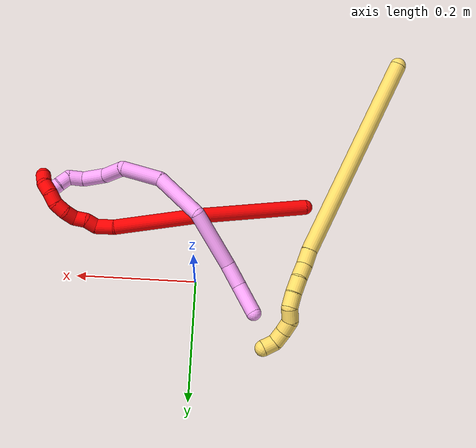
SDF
<sdf version="1.7">
 <world name="default">
  <model name="2">
   <static>0</static>
   <link name="2">
    <collision name="collision-cylinder-e_1_1_4">
     <pose>0.084731 0.038203 -0.011958 -1.87414 1.12943 -1.42301</pose>
     <geometry><cylinder><radius>0.0125</radius><length>0.187423</length></cylinder></geometry>
     <surface>
      <friction><ode><mu>1.16</mu><mu2>1.16</mu2><slip1>0</slip1><slip2>0</slip2></ode></friction>
      <contact><ode><kp>1e+06</kp><kd>1</kd><max_vel>0</max_vel><min_depth>0.001</min_depth></ode></contact>
     </surface>
    </collision>
    <visual name="visual-cylinder-e_1_1_4">
     <pose>0.084731 0.038203 -0.011958 -1.87414 1.12943 -1.42301</pose>
     <geometry><cylinder><radius>0.0125</radius><length>0.187423</length></cylinder></geometry>
     <material><ambient>1 0 0 1</ambient></material>
    </visual>
    <collision name="collision-cylinder-e_2_4_5">
     <pose>0.225444 0.107104 -0.053192 -2.33252 0.922359 -1.71919</pose>
     <geometry><cylinder><radius>0.0125</radius><length>0.140477</length></cylinder></geometry>
     <surface>
      <friction><ode><mu>1.16</mu><mu2>1.16</mu2><slip1>0</slip1><slip2>0</slip2></ode></friction>
      <contact><ode><kp>1e+06</kp><kd>1</kd><max_vel>0</max_vel><min_depth>0.001</min_depth></ode></contact>
     </surface>
    </collision>
    <visual name="visual-cylinder-e_2_4_5">
     <pose>0.225444 0.107104 -0.053192 -2.33252 0.922359 -1.71919</pose>
     <geometry><cylinder><radius>0.0125</radius><length>0.140477</length></cylinder></geometry>
     <material><ambient>1 0 0 1</ambient></material>
    </visual>
    <collision name="collision-cylinder-e_3_5_6">
     <pose>0.293658 0.141848 -0.092002 -2.74013 0.868178 -2.3144</pose>
     <geometry><cylinder><radius>0.0125</radius><length>0.032054</length></cylinder></geometry>
     <surface>
      <friction><ode><mu>1.16</mu><mu2>1.16</mu2><slip1>0</slip1><slip2>0</slip2></ode></friction>
      <contact><ode><kp>1e+06</kp><kd>1</kd><max_vel>0</max_vel><min_depth>0.001</min_depth></ode></contact>
     </surface>
    </collision>
    <visual name="visual-cylinder-e_3_5_6">
     <pose>0.293658 0.141848 -0.092002 -2.74013 0.868178 -2.3144</pose>
     <geometry><cylinder><radius>0.0125</radius><length>0.032054</length></cylinder></geometry>
     <material><ambient>1 0 0 1</ambient></material>
    </visual>
    <collision name="collision-cylinder-e_4_6_7">
     <pose>0.315685 0.144017 -0.102328 1.96987 1.36562 1.77288</pose>
     <geometry><cylinder><radius>0.0125</radius><length>0.020012</length></cylinder></geometry>
     <surface>
      <friction><ode><mu>1.16</mu><mu2>1.16</mu2><slip1>0</slip1><slip2>0</slip2></ode></friction>
      <contact><ode><kp>1e+06</kp><kd>1</kd><max_vel>0</max_vel><min_depth>0.001</min_depth></ode></contact>
     </surface>
    </collision>
    <visual name="visual-cylinder-e_4_6_7">
     <pose>0.315685 0.144017 -0.102328 1.96987 1.36562 1.77288</pose>
     <geometry><cylinder><radius>0.0125</radius><length>0.020012</length></cylinder></geometry>
     <material><ambient>1 0 0 1</ambient></material>
    </visual>
    <collision name="collision-cylinder-e_5_7_8">
     <pose>0.33455 0.143402 -0.107142 -2.83715 1.13567 -2.66959</pose>
     <geometry><cylinder><radius>0.0125</radius><length>0.020001</length></cylinder></geometry>
     <surface>
      <friction><ode><mu>1.16</mu><mu2>1.16</mu2><slip1>0</slip1><slip2>0</slip2></ode></friction>
      <contact><ode><kp>1e+06</kp><kd>1</kd><max_vel>0</max_vel><min_depth>0.001</min_depth></ode></contact>
     </surface>
    </collision>
    <visual name="visual-cylinder-e_5_7_8">
     <pose>0.33455 0.143402 -0.107142 -2.83715 1.13567 -2.66959</pose>
     <geometry><cylinder><radius>0.0125</radius><length>0.020001</length></cylinder></geometry>
     <material><ambient>1 0 0 1</ambient></material>
    </visual>
    <collision name="collision-cylinder-e_6_8_9">
     <pose>0.353323 0.142687 -0.109727 0.94269 1.32401 0.756159</pose>
     <geometry><cylinder><radius>0.0125</radius><length>0.020014</length></cylinder></geometry>
     <surface>
      <friction><ode><mu>1.16</mu><mu2>1.16</mu2><slip1>0</slip1><slip2>0</slip2></ode></friction>
      <contact><ode><kp>1e+06</kp><kd>1</kd><max_vel>0</max_vel><min_depth>0.001</min_depth></ode></contact>
     </surface>
    </collision>
    <visual name="visual-cylinder-e_6_8_9">
     <pose>0.353323 0.142687 -0.109727 0.94269 1.32401 0.756159</pose>
     <geometry><cylinder><radius>0.0125</radius><length>0.020014</length></cylinder></geometry>
     <material><ambient>1 0 0 1</ambient></material>
    </visual>
    <collision name="collision-cylinder-e_7_9_10">
     <pose>0.372123 0.136984 -0.110145 2.03264 1.14172 1.6071</pose>
     <geometry><cylinder><radius>0.0125</radius><length>0.020006</length></cylinder></geometry>
     <surface>
      <friction><ode><mu>1.16</mu><mu2>1.16</mu2><slip1>0</slip1><slip2>0</slip2></ode></friction>
      <contact><ode><kp>1e+06</kp><kd>1</kd><max_vel>0</max_vel><min_depth>0.001</min_depth></ode></contact>
     </surface>
    </collision>
    <visual name="visual-cylinder-e_7_9_10">
     <pose>0.372123 0.136984 -0.110145 2.03264 1.14172 1.6071</pose>
     <geometry><cylinder><radius>0.0125</radius><length>0.020006</length></cylinder></geometry>
     <material><ambient>1 0 0 1</ambient></material>
    </visual>
    <collision name="collision-cylinder-e_8_10_11">
     <pose>0.387956 0.126293 -0.114494 1.91472 0.738662 1.0054</pose>
     <geometry><cylinder><radius>0.0125</radius><length>0.020012</length></cylinder></geometry>
     <surface>
      <friction><ode><mu>1.16</mu><mu2>1.16</mu2><slip1>0</slip1><slip2>0</slip2></ode></friction>
      <contact><ode><kp>1e+06</kp><kd>1</kd><max_vel>0</max_vel><min_depth>0.001</min_depth></ode></contact>
     </surface>
    </collision>
    <visual name="visual-cylinder-e_8_10_11">
     <pose>0.387956 0.126293 -0.114494 1.91472 0.738662 1.0054</pose>
     <geometry><cylinder><radius>0.0125</radius><length>0.020012</length></cylinder></geometry>
     <material><ambient>1 0 0 1</ambient></material>
    </visual>
    <collision name="collision-cylinder-e_9_11_12">
     <pose>0.400724 0.11324 -0.122142 2.27319 0.647355 1.25258</pose>
     <geometry><cylinder><radius>0.0125</radius><length>0.02</length></cylinder></geometry>
     <surface>
      <friction><ode><mu>1.16</mu><mu2>1.16</mu2><slip1>0</slip1><slip2>0</slip2></ode></friction>
      <contact><ode><kp>1e+06</kp><kd>1</kd><max_vel>0</max_vel><min_depth>0.001</min_depth></ode></contact>
     </surface>
    </collision>
    <visual name="visual-cylinder-e_9_11_12">
     <pose>0.400724 0.11324 -0.122142 2.27319 0.647355 1.25258</pose>
     <geometry><cylinder><radius>0.0125</radius><length>0.02</length></cylinder></geometry>
     <material><ambient>1 0 0 1</ambient></material>
    </visual>
    <collision name="collision-cylinder-e_10_12_2">
     <pose>0.408236 0.100374 -0.134497 2.38661 0.148704 0.3714</pose>
     <geometry><cylinder><radius>0.0125</radius><length>0.02</length></cylinder></geometry>
     <surface>
      <friction><ode><mu>1.16</mu><mu2>1.16</mu2><slip1>0</slip1><slip2>0</slip2></ode></friction>
      <contact><ode><kp>1e+06</kp><kd>1</kd><max_vel>0</max_vel><min_depth>0.001</min_depth></ode></contact>
     </surface>
    </collision>
    <visual name="visual-cylinder-e_10_12_2">
     <pose>0.408236 0.100374 -0.134497 2.38661 0.148704 0.3714</pose>
     <geometry><cylinder><radius>0.0125</radius><length>0.02</length></cylinder></geometry>
     <material><ambient>1 0 0 1</ambient></material>
    </visual>
    <collision name="collision-sphere-2">
     <pose>0.409718 0.093597 -0.1417 0 -0 0</pose>
     <geometry><sphere><radius>0.0125</radius></sphere></geometry>
     <surface>
      <friction><ode><mu>1.16</mu><mu2>1.16</mu2><slip1>0</slip1><slip2>0</slip2></ode></friction>
      <contact><ode><kp>1e+06</kp><kd>1</kd><max_vel>0</max_vel><min_depth>0.001</min_depth></ode></contact>
     </surface>
    </collision>
    <visual name="visual-sphere-2">
     <pose>0.409718 0.093597 -0.1417 0 -0 0</pose>
     <geometry><sphere><radius>0.0125</radius></sphere></geometry>
     <material><ambient>1 0 0 1</ambient></material>
    </visual>
    <collision name="collision-sphere-12">
     <pose>0.406755 0.107151 -0.127295 0 -0 0</pose>
     <geometry><sphere><radius>0.0125</radius></sphere></geometry>
     <surface>
      <friction><ode><mu>1.16</mu><mu2>1.16</mu2><slip1>0</slip1><slip2>0</slip2></ode></friction>
      <contact><ode><kp>1e+06</kp><kd>1</kd><max_vel>0</max_vel><min_depth>0.001</min_depth></ode></contact>
     </surface>
    </collision>
    <visual name="visual-sphere-12">
     <pose>0.406755 0.107151 -0.127295 0 -0 0</pose>
     <geometry><sphere><radius>0.0125</radius></sphere></geometry>
     <material><ambient>1 0 0 1</ambient></material>
    </visual>
    <collision name="collision-sphere-11">
     <pose>0.394693 0.119329 -0.116988 0 -0 0</pose>
     <geometry><sphere><radius>0.0125</radius></sphere></geometry>
     <surface>
      <friction><ode><mu>1.16</mu><mu2>1.16</mu2><slip1>0</slip1><slip2>0</slip2></ode></friction>
      <contact><ode><kp>1e+06</kp><kd>1</kd><max_vel>0</max_vel><min_depth>0.001</min_depth></ode></contact>
     </surface>
    </collision>
    <visual name="visual-sphere-11">
     <pose>0.394693 0.119329 -0.116988 0 -0 0</pose>
     <geometry><sphere><radius>0.0125</radius></sphere></geometry>
     <material><ambient>1 0 0 1</ambient></material>
    </visual>
    <collision name="collision-sphere-10">
     <pose>0.381219 0.133258 -0.111999 0 -0 0</pose>
     <geometry><sphere><radius>0.0125</radius></sphere></geometry>
     <surface>
      <friction><ode><mu>1.16</mu><mu2>1.16</mu2><slip1>0</slip1><slip2>0</slip2></ode></friction>
      <contact><ode><kp>1e+06</kp><kd>1</kd><max_vel>0</max_vel><min_depth>0.001</min_depth></ode></contact>
     </surface>
    </collision>
    <visual name="visual-sphere-10">
     <pose>0.381219 0.133258 -0.111999 0 -0 0</pose>
     <geometry><sphere><radius>0.0125</radius></sphere></geometry>
     <material><ambient>1 0 0 1</ambient></material>
    </visual>
    <collision name="collision-sphere-9">
     <pose>0.363027 0.140709 -0.10829 0 -0 0</pose>
     <geometry><sphere><radius>0.0125</radius></sphere></geometry>
     <surface>
      <friction><ode><mu>1.16</mu><mu2>1.16</mu2><slip1>0</slip1><slip2>0</slip2></ode></friction>
      <contact><ode><kp>1e+06</kp><kd>1</kd><max_vel>0</max_vel><min_depth>0.001</min_depth></ode></contact>
     </surface>
    </collision>
    <visual name="visual-sphere-9">
     <pose>0.363027 0.140709 -0.10829 0 -0 0</pose>
     <geometry><sphere><radius>0.0125</radius></sphere></geometry>
     <material><ambient>1 0 0 1</ambient></material>
    </visual>
    <collision name="collision-sphere-4">
     <pose>0.169462 0.076406 -0.023915 0 -0 0</pose>
     <geometry><sphere><radius>0.0125</radius></sphere></geometry>
     <surface>
      <friction><ode><mu>1.16</mu><mu2>1.16</mu2><slip1>0</slip1><slip2>0</slip2></ode></friction>
      <contact><ode><kp>1e+06</kp><kd>1</kd><max_vel>0</max_vel><min_depth>0.001</min_depth></ode></contact>
     </surface>
    </collision>
    <visual name="visual-sphere-4">
     <pose>0.169462 0.076406 -0.023915 0 -0 0</pose>
     <geometry><sphere><radius>0.0125</radius></sphere></geometry>
     <material><ambient>1 0 0 1</ambient></material>
    </visual>
    <collision name="collision-sphere-1">
     <geometry><sphere><radius>0.0125</radius></sphere></geometry>
     <surface>
      <friction><ode><mu>1.16</mu><mu2>1.16</mu2><slip1>0</slip1><slip2>0</slip2></ode></friction>
      <contact><ode><kp>1e+06</kp><kd>1</kd><max_vel>0</max_vel><min_depth>0.001</min_depth></ode></contact>
     </surface>
    </collision>
    <visual name="visual-sphere-1">
     <geometry><sphere><radius>0.0125</radius></sphere></geometry>
     <material><ambient>1 0 0 1</ambient></material>
    </visual>
    <collision name="collision-sphere-8">
     <pose>0.343619 0.144666 -0.111163 0 -0 0</pose>
     <geometry><sphere><radius>0.0125</radius></sphere></geometry>
     <surface>
      <friction><ode><mu>1.16</mu><mu2>1.16</mu2><slip1>0</slip1><slip2>0</slip2></ode></friction>
      <contact><ode><kp>1e+06</kp><kd>1</kd><max_vel>0</max_vel><min_depth>0.001</min_depth></ode></contact>
     </surface>
    </collision>
    <visual name="visual-sphere-8">
     <pose>0.343619 0.144666 -0.111163 0 -0 0</pose>
     <geometry><sphere><radius>0.0125</radius></sphere></geometry>
     <material><ambient>1 0 0 1</ambient></material>
    </visual>
    <collision name="collision-sphere-5">
     <pose>0.281427 0.137801 -0.082469 0 -0 0</pose>
     <geometry><sphere><radius>0.0125</radius></sphere></geometry>
     <surface>
      <friction><ode><mu>1.16</mu><mu2>1.16</mu2><slip1>0</slip1><slip2>0</slip2></ode></friction>
      <contact><ode><kp>1e+06</kp><kd>1</kd><max_vel>0</max_vel><min_depth>0.001</min_depth></ode></contact>
     </surface>
    </collision>
    <visual name="visual-sphere-5">
     <pose>0.281427 0.137801 -0.082469 0 -0 0</pose>
     <geometry><sphere><radius>0.0125</radius></sphere></geometry>
     <material><ambient>1 0 0 1</ambient></material>
    </visual>
    <collision name="collision-sphere-6">
     <pose>0.305889 0.145895 -0.101536 0 -0 0</pose>
     <geometry><sphere><radius>0.0125</radius></sphere></geometry>
     <surface>
      <friction><ode><mu>1.16</mu><mu2>1.16</mu2><slip1>0</slip1><slip2>0</slip2></ode></friction>
      <contact><ode><kp>1e+06</kp><kd>1</kd><max_vel>0</max_vel><min_depth>0.001</min_depth></ode></contact>
     </surface>
    </collision>
    <visual name="visual-sphere-6">
     <pose>0.305889 0.145895 -0.101536 0 -0 0</pose>
     <geometry><sphere><radius>0.0125</radius></sphere></geometry>
     <material><ambient>1 0 0 1</ambient></material>
    </visual>
    <collision name="collision-sphere-7">
     <pose>0.325481 0.142138 -0.10312 0 -0 0</pose>
     <geometry><sphere><radius>0.0125</radius></sphere></geometry>
     <surface>
      <friction><ode><mu>1.16</mu><mu2>1.16</mu2><slip1>0</slip1><slip2>0</slip2></ode></friction>
      <contact><ode><kp>1e+06</kp><kd>1</kd><max_vel>0</max_vel><min_depth>0.001</min_depth></ode></contact>
     </surface>
    </collision>
    <visual name="visual-sphere-7">
     <pose>0.325481 0.142138 -0.10312 0 -0 0</pose>
     <geometry><sphere><radius>0.0125</radius></sphere></geometry>
     <material><ambient>1 0 0 1</ambient></material>
    </visual>
    <inertial>
     <pose>0.216863 0.089798 -0.057354 0 -0 0</pose>
     <mass>0.5</mass>
     <inertia>
      <ixx>-0.000329</ixx>
      <ixy>0</ixy>
      <ixz>0</ixz>
      <iyy>0.00025</iyy>
      <iyz>0</iyz>
      <izz>-0.00104</izz>
     </inertia>
    </inertial>
   </link>
   <pose>-0.177933 -0.13883 0.011492 -0.174406 -0.461201 -0.193602</pose>
  </model>
  <model name="4">
   <static>0</static>
   <link name="4">
    <collision name="collision-cylinder-e_1_1_4">
     <pose>0.005047 -0.024263 0.008078 1.24941 0.194871 0.140722</pose>
     <geometry><cylinder><radius>0.0125</radius><length>0.052131</length></cylinder></geometry>
     <surface>
      <friction><ode><mu>1.16</mu><mu2>1.16</mu2><slip1>0</slip1><slip2>0</slip2></ode></friction>
      <contact><ode><kp>1e+06</kp><kd>1</kd><max_vel>0</max_vel><min_depth>0.001</min_depth></ode></contact>
     </surface>
    </collision>
    <visual name="visual-cylinder-e_1_1_4">
     <pose>0.005047 -0.024263 0.008078 1.24941 0.194871 0.140722</pose>
     <geometry><cylinder><radius>0.0125</radius><length>0.052131</length></cylinder></geometry>
     <material><ambient>1 0.65098 0.996078 1</ambient></material>
    </visual>
    <collision name="collision-cylinder-e_2_4_5">
     <pose>0.016383 -0.064472 0.026322 1.00321 0.321002 0.177097</pose>
     <geometry><cylinder><radius>0.0125</radius><length>0.039859</length></cylinder></geometry>
     <surface>
      <friction><ode><mu>1.16</mu><mu2>1.16</mu2><slip1>0</slip1><slip2>0</slip2></ode></friction>
      <contact><ode><kp>1e+06</kp><kd>1</kd><max_vel>0</max_vel><min_depth>0.001</min_depth></ode></contact>
     </surface>
    </collision>
    <visual name="visual-cylinder-e_2_4_5">
     <pose>0.016383 -0.064472 0.026322 1.00321 0.321002 0.177097</pose>
     <geometry><cylinder><radius>0.0125</radius><length>0.039859</length></cylinder></geometry>
     <material><ambient>1 0.65098 0.996078 1</ambient></material>
    </visual>
    <collision name="collision-cylinder-e_3_5_6">
     <pose>0.044617 -0.111477 0.068082 0.776871 0.459923 0.191019</pose>
     <geometry><cylinder><radius>0.0125</radius><length>0.098882</length></cylinder></geometry>
     <surface>
      <friction><ode><mu>1.16</mu><mu2>1.16</mu2><slip1>0</slip1><slip2>0</slip2></ode></friction>
      <contact><ode><kp>1e+06</kp><kd>1</kd><max_vel>0</max_vel><min_depth>0.001</min_depth></ode></contact>
     </surface>
    </collision>
    <visual name="visual-cylinder-e_3_5_6">
     <pose>0.044617 -0.111477 0.068082 0.776871 0.459923 0.191019</pose>
     <geometry><cylinder><radius>0.0125</radius><length>0.098882</length></cylinder></geometry>
     <material><ambient>1 0.65098 0.996078 1</ambient></material>
    </visual>
    <collision name="collision-cylinder-e_4_6_7">
     <pose>0.085479 -0.183227 0.104784 1.4459 0.432179 0.382624</pose>
     <geometry><cylinder><radius>0.0125</radius><length>0.090326</length></cylinder></geometry>
     <surface>
      <friction><ode><mu>1.16</mu><mu2>1.16</mu2><slip1>0</slip1><slip2>0</slip2></ode></friction>
      <contact><ode><kp>1e+06</kp><kd>1</kd><max_vel>0</max_vel><min_depth>0.001</min_depth></ode></contact>
     </surface>
    </collision>
    <visual name="visual-cylinder-e_4_6_7">
     <pose>0.085479 -0.183227 0.104784 1.4459 0.432179 0.382624</pose>
     <geometry><cylinder><radius>0.0125</radius><length>0.090326</length></cylinder></geometry>
     <material><ambient>1 0.65098 0.996078 1</ambient></material>
    </visual>
    <collision name="collision-cylinder-e_5_7_8">
     <pose>0.130714 -0.243736 0.107818 1.6751 0.922748 1.00864</pose>
     <geometry><cylinder><radius>0.0125</radius><length>0.066022</length></cylinder></geometry>
     <surface>
      <friction><ode><mu>1.16</mu><mu2>1.16</mu2><slip1>0</slip1><slip2>0</slip2></ode></friction>
      <contact><ode><kp>1e+06</kp><kd>1</kd><max_vel>0</max_vel><min_depth>0.001</min_depth></ode></contact>
     </surface>
    </collision>
    <visual name="visual-cylinder-e_5_7_8">
     <pose>0.130714 -0.243736 0.107818 1.6751 0.922748 1.00864</pose>
     <geometry><cylinder><radius>0.0125</radius><length>0.066022</length></cylinder></geometry>
     <material><ambient>1 0.65098 0.996078 1</ambient></material>
    </visual>
    <collision name="collision-cylinder-e_6_8_9">
     <pose>0.16652 -0.274425 0.090374 2.52598 0.466813 1.28422</pose>
     <geometry><cylinder><radius>0.0125</radius><length>0.042162</length></cylinder></geometry>
     <surface>
      <friction><ode><mu>1.16</mu><mu2>1.16</mu2><slip1>0</slip1><slip2>0</slip2></ode></friction>
      <contact><ode><kp>1e+06</kp><kd>1</kd><max_vel>0</max_vel><min_depth>0.001</min_depth></ode></contact>
     </surface>
    </collision>
    <visual name="visual-cylinder-e_6_8_9">
     <pose>0.16652 -0.274425 0.090374 2.52598 0.466813 1.28422</pose>
     <geometry><cylinder><radius>0.0125</radius><length>0.042162</length></cylinder></geometry>
     <material><ambient>1 0.65098 0.996078 1</ambient></material>
    </visual>
    <collision name="collision-cylinder-e_7_9_10">
     <pose>0.190137 -0.296944 0.062848 2.37753 0.698234 1.47231</pose>
     <geometry><cylinder><radius>0.0125</radius><length>0.043961</length></cylinder></geometry>
     <surface>
      <friction><ode><mu>1.16</mu><mu2>1.16</mu2><slip1>0</slip1><slip2>0</slip2></ode></friction>
      <contact><ode><kp>1e+06</kp><kd>1</kd><max_vel>0</max_vel><min_depth>0.001</min_depth></ode></contact>
     </surface>
    </collision>
    <visual name="visual-cylinder-e_7_9_10">
     <pose>0.190137 -0.296944 0.062848 2.37753 0.698234 1.47231</pose>
     <geometry><cylinder><radius>0.0125</radius><length>0.043961</length></cylinder></geometry>
     <material><ambient>1 0.65098 0.996078 1</ambient></material>
    </visual>
    <collision name="collision-cylinder-e_8_10_11">
     <pose>0.216278 -0.313307 0.049994 1.71765 1.19306 1.33339</pose>
     <geometry><cylinder><radius>0.0125</radius><length>0.025843</length></cylinder></geometry>
     <surface>
      <friction><ode><mu>1.16</mu><mu2>1.16</mu2><slip1>0</slip1><slip2>0</slip2></ode></friction>
      <contact><ode><kp>1e+06</kp><kd>1</kd><max_vel>0</max_vel><min_depth>0.001</min_depth></ode></contact>
     </surface>
    </collision>
    <visual name="visual-cylinder-e_8_10_11">
     <pose>0.216278 -0.313307 0.049994 1.71765 1.19306 1.33339</pose>
     <geometry><cylinder><radius>0.0125</radius><length>0.025843</length></cylinder></geometry>
     <material><ambient>1 0.65098 0.996078 1</ambient></material>
    </visual>
    <collision name="collision-cylinder-e_9_11_12">
     <pose>0.237012 -0.315481 0.044682 -2.63831 1.02761 -2.28668</pose>
     <geometry><cylinder><radius>0.0125</radius><length>0.020381</length></cylinder></geometry>
     <surface>
      <friction><ode><mu>1.16</mu><mu2>1.16</mu2><slip1>0</slip1><slip2>0</slip2></ode></friction>
      <contact><ode><kp>1e+06</kp><kd>1</kd><max_vel>0</max_vel><min_depth>0.001</min_depth></ode></contact>
     </surface>
    </collision>
    <visual name="visual-cylinder-e_9_11_12">
     <pose>0.237012 -0.315481 0.044682 -2.63831 1.02761 -2.28668</pose>
     <geometry><cylinder><radius>0.0125</radius><length>0.020381</length></cylinder></geometry>
     <material><ambient>1 0.65098 0.996078 1</ambient></material>
    </visual>
    <collision name="collision-cylinder-e_10_12_2">
     <pose>0.253853 -0.311008 0.034172 -2.82479 0.918159 -2.51645</pose>
     <geometry><cylinder><radius>0.0125</radius><length>0.020434</length></cylinder></geometry>
     <surface>
      <friction><ode><mu>1.16</mu><mu2>1.16</mu2><slip1>0</slip1><slip2>0</slip2></ode></friction>
      <contact><ode><kp>1e+06</kp><kd>1</kd><max_vel>0</max_vel><min_depth>0.001</min_depth></ode></contact>
     </surface>
    </collision>
    <visual name="visual-cylinder-e_10_12_2">
     <pose>0.253853 -0.311008 0.034172 -2.82479 0.918159 -2.51645</pose>
     <geometry><cylinder><radius>0.0125</radius><length>0.020434</length></cylinder></geometry>
     <material><ambient>1 0.65098 0.996078 1</ambient></material>
    </visual>
    <collision name="collision-sphere-2">
     <pose>0.261971 -0.309075 0.028277 0 -0 0</pose>
     <geometry><sphere><radius>0.0125</radius></sphere></geometry>
     <surface>
      <friction><ode><mu>1.16</mu><mu2>1.16</mu2><slip1>0</slip1><slip2>0</slip2></ode></friction>
      <contact><ode><kp>1e+06</kp><kd>1</kd><max_vel>0</max_vel><min_depth>0.001</min_depth></ode></contact>
     </surface>
    </collision>
    <visual name="visual-sphere-2">
     <pose>0.261971 -0.309075 0.028277 0 -0 0</pose>
     <geometry><sphere><radius>0.0125</radius></sphere></geometry>
     <material><ambient>1 0.65098 0.996078 1</ambient></material>
    </visual>
    <collision name="collision-sphere-12">
     <pose>0.245736 -0.312941 0.040068 0 -0 0</pose>
     <geometry><sphere><radius>0.0125</radius></sphere></geometry>
     <surface>
      <friction><ode><mu>1.16</mu><mu2>1.16</mu2><slip1>0</slip1><slip2>0</slip2></ode></friction>
      <contact><ode><kp>1e+06</kp><kd>1</kd><max_vel>0</max_vel><min_depth>0.001</min_depth></ode></contact>
     </surface>
    </collision>
    <visual name="visual-sphere-12">
     <pose>0.245736 -0.312941 0.040068 0 -0 0</pose>
     <geometry><sphere><radius>0.0125</radius></sphere></geometry>
     <material><ambient>1 0.65098 0.996078 1</ambient></material>
    </visual>
    <collision name="collision-sphere-11">
     <pose>0.228289 -0.318021 0.049296 0 -0 0</pose>
     <geometry><sphere><radius>0.0125</radius></sphere></geometry>
     <surface>
      <friction><ode><mu>1.16</mu><mu2>1.16</mu2><slip1>0</slip1><slip2>0</slip2></ode></friction>
      <contact><ode><kp>1e+06</kp><kd>1</kd><max_vel>0</max_vel><min_depth>0.001</min_depth></ode></contact>
     </surface>
    </collision>
    <visual name="visual-sphere-11">
     <pose>0.228289 -0.318021 0.049296 0 -0 0</pose>
     <geometry><sphere><radius>0.0125</radius></sphere></geometry>
     <material><ambient>1 0.65098 0.996078 1</ambient></material>
    </visual>
    <collision name="collision-sphere-10">
     <pose>0.204268 -0.308593 0.050691 0 -0 0</pose>
     <geometry><sphere><radius>0.0125</radius></sphere></geometry>
     <surface>
      <friction><ode><mu>1.16</mu><mu2>1.16</mu2><slip1>0</slip1><slip2>0</slip2></ode></friction>
      <contact><ode><kp>1e+06</kp><kd>1</kd><max_vel>0</max_vel><min_depth>0.001</min_depth></ode></contact>
     </surface>
    </collision>
    <visual name="visual-sphere-10">
     <pose>0.204268 -0.308593 0.050691 0 -0 0</pose>
     <geometry><sphere><radius>0.0125</radius></sphere></geometry>
     <material><ambient>1 0.65098 0.996078 1</ambient></material>
    </visual>
    <collision name="collision-sphere-9">
     <pose>0.176007 -0.285296 0.075004 0 -0 0</pose>
     <geometry><sphere><radius>0.0125</radius></sphere></geometry>
     <surface>
      <friction><ode><mu>1.16</mu><mu2>1.16</mu2><slip1>0</slip1><slip2>0</slip2></ode></friction>
      <contact><ode><kp>1e+06</kp><kd>1</kd><max_vel>0</max_vel><min_depth>0.001</min_depth></ode></contact>
     </surface>
    </collision>
    <visual name="visual-sphere-9">
     <pose>0.176007 -0.285296 0.075004 0 -0 0</pose>
     <geometry><sphere><radius>0.0125</radius></sphere></geometry>
     <material><ambient>1 0.65098 0.996078 1</ambient></material>
    </visual>
    <collision name="collision-sphere-4">
     <pose>0.010095 -0.048525 0.016156 0 -0 0</pose>
     <geometry><sphere><radius>0.0125</radius></sphere></geometry>
     <surface>
      <friction><ode><mu>1.16</mu><mu2>1.16</mu2><slip1>0</slip1><slip2>0</slip2></ode></friction>
      <contact><ode><kp>1e+06</kp><kd>1</kd><max_vel>0</max_vel><min_depth>0.001</min_depth></ode></contact>
     </surface>
    </collision>
    <visual name="visual-sphere-4">
     <pose>0.010095 -0.048525 0.016156 0 -0 0</pose>
     <geometry><sphere><radius>0.0125</radius></sphere></geometry>
     <material><ambient>1 0.65098 0.996078 1</ambient></material>
    </visual>
    <collision name="collision-sphere-1">
     <geometry><sphere><radius>0.0125</radius></sphere></geometry>
     <surface>
      <friction><ode><mu>1.16</mu><mu2>1.16</mu2><slip1>0</slip1><slip2>0</slip2></ode></friction>
      <contact><ode><kp>1e+06</kp><kd>1</kd><max_vel>0</max_vel><min_depth>0.001</min_depth></ode></contact>
     </surface>
    </collision>
    <visual name="visual-sphere-1">
     <geometry><sphere><radius>0.0125</radius></sphere></geometry>
     <material><ambient>1 0.65098 0.996078 1</ambient></material>
    </visual>
    <collision name="collision-sphere-8">
     <pose>0.157032 -0.263554 0.105743 0 -0 0</pose>
     <geometry><sphere><radius>0.0125</radius></sphere></geometry>
     <surface>
      <friction><ode><mu>1.16</mu><mu2>1.16</mu2><slip1>0</slip1><slip2>0</slip2></ode></friction>
      <contact><ode><kp>1e+06</kp><kd>1</kd><max_vel>0</max_vel><min_depth>0.001</min_depth></ode></contact>
     </surface>
    </collision>
    <visual name="visual-sphere-8">
     <pose>0.157032 -0.263554 0.105743 0 -0 0</pose>
     <geometry><sphere><radius>0.0125</radius></sphere></geometry>
     <material><ambient>1 0.65098 0.996078 1</ambient></material>
    </visual>
    <collision name="collision-sphere-5">
     <pose>0.022671 -0.080418 0.036489 0 -0 0</pose>
     <geometry><sphere><radius>0.0125</radius></sphere></geometry>
     <surface>
      <friction><ode><mu>1.16</mu><mu2>1.16</mu2><slip1>0</slip1><slip2>0</slip2></ode></friction>
      <contact><ode><kp>1e+06</kp><kd>1</kd><max_vel>0</max_vel><min_depth>0.001</min_depth></ode></contact>
     </surface>
    </collision>
    <visual name="visual-sphere-5">
     <pose>0.022671 -0.080418 0.036489 0 -0 0</pose>
     <geometry><sphere><radius>0.0125</radius></sphere></geometry>
     <material><ambient>1 0.65098 0.996078 1</ambient></material>
    </visual>
    <collision name="collision-sphere-6">
     <pose>0.066562 -0.142536 0.099676 0 -0 0</pose>
     <geometry><sphere><radius>0.0125</radius></sphere></geometry>
     <surface>
      <friction><ode><mu>1.16</mu><mu2>1.16</mu2><slip1>0</slip1><slip2>0</slip2></ode></friction>
      <contact><ode><kp>1e+06</kp><kd>1</kd><max_vel>0</max_vel><min_depth>0.001</min_depth></ode></contact>
     </surface>
    </collision>
    <visual name="visual-sphere-6">
     <pose>0.066562 -0.142536 0.099676 0 -0 0</pose>
     <geometry><sphere><radius>0.0125</radius></sphere></geometry>
     <material><ambient>1 0.65098 0.996078 1</ambient></material>
    </visual>
    <collision name="collision-sphere-7">
     <pose>0.104395 -0.223917 0.109893 0 -0 0</pose>
     <geometry><sphere><radius>0.0125</radius></sphere></geometry>
     <surface>
      <friction><ode><mu>1.16</mu><mu2>1.16</mu2><slip1>0</slip1><slip2>0</slip2></ode></friction>
      <contact><ode><kp>1e+06</kp><kd>1</kd><max_vel>0</max_vel><min_depth>0.001</min_depth></ode></contact>
     </surface>
    </collision>
    <visual name="visual-sphere-7">
     <pose>0.104395 -0.223917 0.109893 0 -0 0</pose>
     <geometry><sphere><radius>0.0125</radius></sphere></geometry>
     <material><ambient>1 0.65098 0.996078 1</ambient></material>
    </visual>
    <inertial>
     <pose>0.10533 -0.186011 0.068519 0 -0 0</pose>
     <mass>0.5</mass>
     <inertia>
      <ixx>0.000246</ixx>
      <ixy>0</ixy>
      <ixz>0</ixz>
      <iyy>0.000157</iyy>
      <iyz>0</iyz>
      <izz>5.2e-05</izz>
     </inertia>
    </inertial>
   </link>
   <pose>-0.099105 0.053747 0.04007 0.518311 -0.369501 0.271865</pose>
  </model>
  <model name="5">
   <static>0</static>
   <link name="5">
    <collision name="collision-cylinder-e_1_1_4">
     <pose>0.016158 0.055392 -0.151493 -2.79105 0.099841 -0.54997</pose>
     <geometry><cylinder><radius>0.0125</radius><length>0.32422</length></cylinder></geometry>
     <surface>
      <friction><ode><mu>1.16</mu><mu2>1.16</mu2><slip1>0</slip1><slip2>0</slip2></ode></friction>
      <contact><ode><kp>1e+06</kp><kd>1</kd><max_vel>0</max_vel><min_depth>0.001</min_depth></ode></contact>
     </surface>
    </collision>
    <visual name="visual-cylinder-e_1_1_4">
     <pose>0.016158 0.055392 -0.151493 -2.79105 0.099841 -0.54997</pose>
     <geometry><cylinder><radius>0.0125</radius><length>0.32422</length></cylinder></geometry>
     <material><ambient>1 0.858824 0.4 1</ambient></material>
    </visual>
    <collision name="collision-cylinder-e_2_4_5">
     <pose>0.03256 0.115955 -0.314003 -2.70278 0.020001 -0.089633</pose>
     <geometry><cylinder><radius>0.0125</radius><length>0.024343</length></cylinder></geometry>
     <surface>
      <friction><ode><mu>1.16</mu><mu2>1.16</mu2><slip1>0</slip1><slip2>0</slip2></ode></friction>
      <contact><ode><kp>1e+06</kp><kd>1</kd><max_vel>0</max_vel><min_depth>0.001</min_depth></ode></contact>
     </surface>
    </collision>
    <visual name="visual-cylinder-e_2_4_5">
     <pose>0.03256 0.115955 -0.314003 -2.70278 0.020001 -0.089633</pose>
     <geometry><cylinder><radius>0.0125</radius><length>0.024343</length></cylinder></geometry>
     <material><ambient>1 0.858824 0.4 1</ambient></material>
    </visual>
    <collision name="collision-cylinder-e_3_5_6">
     <pose>0.03459 0.127398 -0.333983 -2.53102 0.16188 -0.503867</pose>
     <geometry><cylinder><radius>0.0125</radius><length>0.022171</length></cylinder></geometry>
     <surface>
      <friction><ode><mu>1.16</mu><mu2>1.16</mu2><slip1>0</slip1><slip2>0</slip2></ode></friction>
      <contact><ode><kp>1e+06</kp><kd>1</kd><max_vel>0</max_vel><min_depth>0.001</min_depth></ode></contact>
     </surface>
    </collision>
    <visual name="visual-cylinder-e_3_5_6">
     <pose>0.03459 0.127398 -0.333983 -2.53102 0.16188 -0.503867</pose>
     <geometry><cylinder><radius>0.0125</radius><length>0.022171</length></cylinder></geometry>
     <material><ambient>1 0.858824 0.4 1</ambient></material>
    </visual>
    <collision name="collision-cylinder-e_4_6_7">
     <pose>0.036885 0.13892 -0.353854 -2.69301 0.041976 -0.183512</pose>
     <geometry><cylinder><radius>0.0125</radius><length>0.024231</length></cylinder></geometry>
     <surface>
      <friction><ode><mu>1.16</mu><mu2>1.16</mu2><slip1>0</slip1><slip2>0</slip2></ode></friction>
      <contact><ode><kp>1e+06</kp><kd>1</kd><max_vel>0</max_vel><min_depth>0.001</min_depth></ode></contact>
     </surface>
    </collision>
    <visual name="visual-cylinder-e_4_6_7">
     <pose>0.036885 0.13892 -0.353854 -2.69301 0.041976 -0.183512</pose>
     <geometry><cylinder><radius>0.0125</radius><length>0.024231</length></cylinder></geometry>
     <material><ambient>1 0.858824 0.4 1</ambient></material>
    </visual>
    <collision name="collision-cylinder-e_5_7_8">
     <pose>0.036588 0.148627 -0.37518 -2.73728 -0.070995 0.343132</pose>
     <geometry><cylinder><radius>0.0125</radius><length>0.022723</length></cylinder></geometry>
     <surface>
      <friction><ode><mu>1.16</mu><mu2>1.16</mu2><slip1>0</slip1><slip2>0</slip2></ode></friction>
      <contact><ode><kp>1e+06</kp><kd>1</kd><max_vel>0</max_vel><min_depth>0.001</min_depth></ode></contact>
     </surface>
    </collision>
    <visual name="visual-cylinder-e_5_7_8">
     <pose>0.036588 0.148627 -0.37518 -2.73728 -0.070995 0.343132</pose>
     <geometry><cylinder><radius>0.0125</radius><length>0.022723</length></cylinder></geometry>
     <material><ambient>1 0.858824 0.4 1</ambient></material>
    </visual>
    <collision name="collision-cylinder-e_6_8_9">
     <pose>0.029935 0.153154 -0.394591 -3.13402 -0.57657 3.11607</pose>
     <geometry><cylinder><radius>0.0125</radius><length>0.02145</length></cylinder></geometry>
     <surface>
      <friction><ode><mu>1.16</mu><mu2>1.16</mu2><slip1>0</slip1><slip2>0</slip2></ode></friction>
      <contact><ode><kp>1e+06</kp><kd>1</kd><max_vel>0</max_vel><min_depth>0.001</min_depth></ode></contact>
     </surface>
    </collision>
    <visual name="visual-cylinder-e_6_8_9">
     <pose>0.029935 0.153154 -0.394591 -3.13402 -0.57657 3.11607</pose>
     <geometry><cylinder><radius>0.0125</radius><length>0.02145</length></cylinder></geometry>
     <material><ambient>1 0.858824 0.4 1</ambient></material>
    </visual>
    <collision name="collision-cylinder-e_7_9_10">
     <pose>0.024067 0.151791 -0.413479 2.99798 -0.002143 -0.029787</pose>
     <geometry><cylinder><radius>0.0125</radius><length>0.020001</length></cylinder></geometry>
     <surface>
      <friction><ode><mu>1.16</mu><mu2>1.16</mu2><slip1>0</slip1><slip2>0</slip2></ode></friction>
      <contact><ode><kp>1e+06</kp><kd>1</kd><max_vel>0</max_vel><min_depth>0.001</min_depth></ode></contact>
     </surface>
    </collision>
    <visual name="visual-cylinder-e_7_9_10">
     <pose>0.024067 0.151791 -0.413479 2.99798 -0.002143 -0.029787</pose>
     <geometry><cylinder><radius>0.0125</radius><length>0.020001</length></cylinder></geometry>
     <material><ambient>1 0.858824 0.4 1</ambient></material>
    </visual>
    <collision name="collision-cylinder-e_8_10_11">
     <pose>0.025463 0.149936 -0.433638 3.10037 0.137145 2.55843</pose>
     <geometry><cylinder><radius>0.0125</radius><length>0.020737</length></cylinder></geometry>
     <surface>
      <friction><ode><mu>1.16</mu><mu2>1.16</mu2><slip1>0</slip1><slip2>0</slip2></ode></friction>
      <contact><ode><kp>1e+06</kp><kd>1</kd><max_vel>0</max_vel><min_depth>0.001</min_depth></ode></contact>
     </surface>
    </collision>
    <visual name="visual-cylinder-e_8_10_11">
     <pose>0.025463 0.149936 -0.433638 3.10037 0.137145 2.55843</pose>
     <geometry><cylinder><radius>0.0125</radius><length>0.020737</length></cylinder></geometry>
     <material><ambient>1 0.858824 0.4 1</ambient></material>
    </visual>
    <collision name="collision-cylinder-e_9_11_2">
     <pose>0.033416 0.149859 -0.451544 -3.09637 0.706984 -3.01916</pose>
     <geometry><cylinder><radius>0.0125</radius><length>0.020125</length></cylinder></geometry>
     <surface>
      <friction><ode><mu>1.16</mu><mu2>1.16</mu2><slip1>0</slip1><slip2>0</slip2></ode></friction>
      <contact><ode><kp>1e+06</kp><kd>1</kd><max_vel>0</max_vel><min_depth>0.001</min_depth></ode></contact>
     </surface>
    </collision>
    <visual name="visual-cylinder-e_9_11_2">
     <pose>0.033416 0.149859 -0.451544 -3.09637 0.706984 -3.01916</pose>
     <geometry><cylinder><radius>0.0125</radius><length>0.020125</length></cylinder></geometry>
     <material><ambient>1 0.858824 0.4 1</ambient></material>
    </visual>
    <collision name="collision-sphere-2">
     <pose>0.039952 0.150204 -0.459186 0 -0 0</pose>
     <geometry><sphere><radius>0.0125</radius></sphere></geometry>
     <surface>
      <friction><ode><mu>1.16</mu><mu2>1.16</mu2><slip1>0</slip1><slip2>0</slip2></ode></friction>
      <contact><ode><kp>1e+06</kp><kd>1</kd><max_vel>0</max_vel><min_depth>0.001</min_depth></ode></contact>
     </surface>
    </collision>
    <visual name="visual-sphere-2">
     <pose>0.039952 0.150204 -0.459186 0 -0 0</pose>
     <geometry><sphere><radius>0.0125</radius></sphere></geometry>
     <material><ambient>1 0.858824 0.4 1</ambient></material>
    </visual>
    <collision name="collision-sphere-11">
     <pose>0.02688 0.149513 -0.443901 0 -0 0</pose>
     <geometry><sphere><radius>0.0125</radius></sphere></geometry>
     <surface>
      <friction><ode><mu>1.16</mu><mu2>1.16</mu2><slip1>0</slip1><slip2>0</slip2></ode></friction>
      <contact><ode><kp>1e+06</kp><kd>1</kd><max_vel>0</max_vel><min_depth>0.001</min_depth></ode></contact>
     </surface>
    </collision>
    <visual name="visual-sphere-11">
     <pose>0.02688 0.149513 -0.443901 0 -0 0</pose>
     <geometry><sphere><radius>0.0125</radius></sphere></geometry>
     <material><ambient>1 0.858824 0.4 1</ambient></material>
    </visual>
    <collision name="collision-sphere-10">
     <pose>0.024045 0.150359 -0.423376 0 -0 0</pose>
     <geometry><sphere><radius>0.0125</radius></sphere></geometry>
     <surface>
      <friction><ode><mu>1.16</mu><mu2>1.16</mu2><slip1>0</slip1><slip2>0</slip2></ode></friction>
      <contact><ode><kp>1e+06</kp><kd>1</kd><max_vel>0</max_vel><min_depth>0.001</min_depth></ode></contact>
     </surface>
    </collision>
    <visual name="visual-sphere-10">
     <pose>0.024045 0.150359 -0.423376 0 -0 0</pose>
     <geometry><sphere><radius>0.0125</radius></sphere></geometry>
     <material><ambient>1 0.858824 0.4 1</ambient></material>
    </visual>
    <collision name="collision-sphere-9">
     <pose>0.024088 0.153222 -0.403582 0 -0 0</pose>
     <geometry><sphere><radius>0.0125</radius></sphere></geometry>
     <surface>
      <friction><ode><mu>1.16</mu><mu2>1.16</mu2><slip1>0</slip1><slip2>0</slip2></ode></friction>
      <contact><ode><kp>1e+06</kp><kd>1</kd><max_vel>0</max_vel><min_depth>0.001</min_depth></ode></contact>
     </surface>
    </collision>
    <visual name="visual-sphere-9">
     <pose>0.024088 0.153222 -0.403582 0 -0 0</pose>
     <geometry><sphere><radius>0.0125</radius></sphere></geometry>
     <material><ambient>1 0.858824 0.4 1</ambient></material>
    </visual>
    <collision name="collision-sphere-4">
     <pose>0.032317 0.110784 -0.302987 0 -0 0</pose>
     <geometry><sphere><radius>0.0125</radius></sphere></geometry>
     <surface>
      <friction><ode><mu>1.16</mu><mu2>1.16</mu2><slip1>0</slip1><slip2>0</slip2></ode></friction>
      <contact><ode><kp>1e+06</kp><kd>1</kd><max_vel>0</max_vel><min_depth>0.001</min_depth></ode></contact>
     </surface>
    </collision>
    <visual name="visual-sphere-4">
     <pose>0.032317 0.110784 -0.302987 0 -0 0</pose>
     <geometry><sphere><radius>0.0125</radius></sphere></geometry>
     <material><ambient>1 0.858824 0.4 1</ambient></material>
    </visual>
    <collision name="collision-sphere-1">
     <geometry><sphere><radius>0.0125</radius></sphere></geometry>
     <surface>
      <friction><ode><mu>1.16</mu><mu2>1.16</mu2><slip1>0</slip1><slip2>0</slip2></ode></friction>
      <contact><ode><kp>1e+06</kp><kd>1</kd><max_vel>0</max_vel><min_depth>0.001</min_depth></ode></contact>
     </surface>
    </collision>
    <visual name="visual-sphere-1">
     <geometry><sphere><radius>0.0125</radius></sphere></geometry>
     <material><ambient>1 0.858824 0.4 1</ambient></material>
    </visual>
    <collision name="collision-sphere-8">
     <pose>0.035782 0.153086 -0.385599 0 -0 0</pose>
     <geometry><sphere><radius>0.0125</radius></sphere></geometry>
     <surface>
      <friction><ode><mu>1.16</mu><mu2>1.16</mu2><slip1>0</slip1><slip2>0</slip2></ode></friction>
      <contact><ode><kp>1e+06</kp><kd>1</kd><max_vel>0</max_vel><min_depth>0.001</min_depth></ode></contact>
     </surface>
    </collision>
    <visual name="visual-sphere-8">
     <pose>0.035782 0.153086 -0.385599 0 -0 0</pose>
     <geometry><sphere><radius>0.0125</radius></sphere></geometry>
     <material><ambient>1 0.858824 0.4 1</ambient></material>
    </visual>
    <collision name="collision-sphere-5">
     <pose>0.032804 0.121125 -0.325019 0 -0 0</pose>
     <geometry><sphere><radius>0.0125</radius></sphere></geometry>
     <surface>
      <friction><ode><mu>1.16</mu><mu2>1.16</mu2><slip1>0</slip1><slip2>0</slip2></ode></friction>
      <contact><ode><kp>1e+06</kp><kd>1</kd><max_vel>0</max_vel><min_depth>0.001</min_depth></ode></contact>
     </surface>
    </collision>
    <visual name="visual-sphere-5">
     <pose>0.032804 0.121125 -0.325019 0 -0 0</pose>
     <geometry><sphere><radius>0.0125</radius></sphere></geometry>
     <material><ambient>1 0.858824 0.4 1</ambient></material>
    </visual>
    <collision name="collision-sphere-6">
     <pose>0.036377 0.13367 -0.342947 0 -0 0</pose>
     <geometry><sphere><radius>0.0125</radius></sphere></geometry>
     <surface>
      <friction><ode><mu>1.16</mu><mu2>1.16</mu2><slip1>0</slip1><slip2>0</slip2></ode></friction>
      <contact><ode><kp>1e+06</kp><kd>1</kd><max_vel>0</max_vel><min_depth>0.001</min_depth></ode></contact>
     </surface>
    </collision>
    <visual name="visual-sphere-6">
     <pose>0.036377 0.13367 -0.342947 0 -0 0</pose>
     <geometry><sphere><radius>0.0125</radius></sphere></geometry>
     <material><ambient>1 0.858824 0.4 1</ambient></material>
    </visual>
    <collision name="collision-sphere-7">
     <pose>0.037394 0.144169 -0.364761 0 -0 0</pose>
     <geometry><sphere><radius>0.0125</radius></sphere></geometry>
     <surface>
      <friction><ode><mu>1.16</mu><mu2>1.16</mu2><slip1>0</slip1><slip2>0</slip2></ode></friction>
      <contact><ode><kp>1e+06</kp><kd>1</kd><max_vel>0</max_vel><min_depth>0.001</min_depth></ode></contact>
     </surface>
    </collision>
    <visual name="visual-sphere-7">
     <pose>0.037394 0.144169 -0.364761 0 -0 0</pose>
     <geometry><sphere><radius>0.0125</radius></sphere></geometry>
     <material><ambient>1 0.858824 0.4 1</ambient></material>
    </visual>
    <inertial>
     <pose>0.021695 0.085592 -0.232157 0 -0 0</pose>
     <mass>0.5</mass>
     <inertia>
      <ixx>0.000945</ixx>
      <ixy>0</ixy>
      <ixz>0</ixz>
      <iyy>-0.003709</iyy>
      <iyz>0</iyz>
      <izz>-0.001299</izz>
     </inertia>
    </inertial>
   </link>
   <pose>-0.298374 -0.315728 0.212754 1.11779 -0.459026 -0.261677</pose>
  </model>
 </world>
</sdf>
